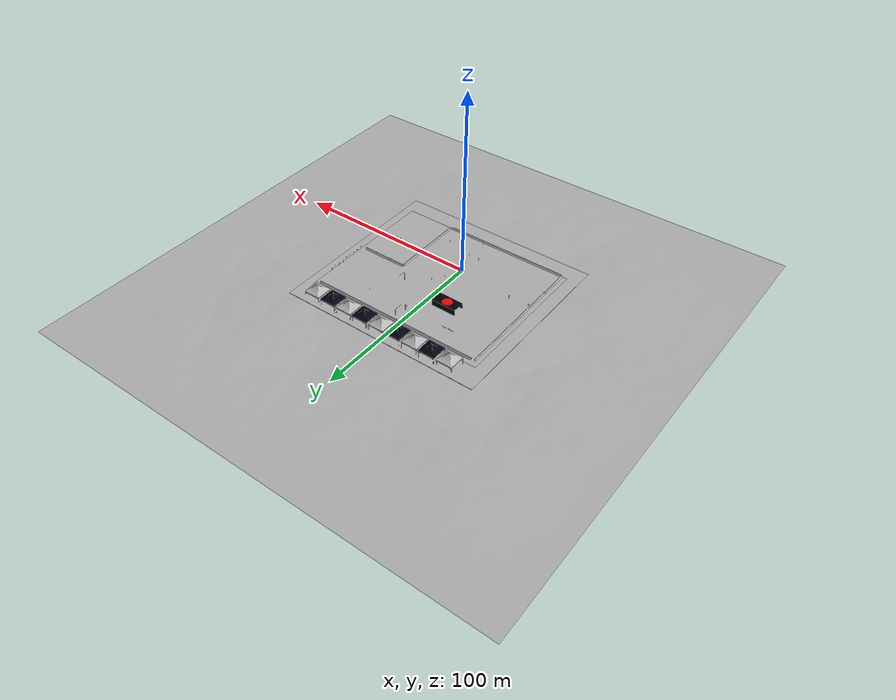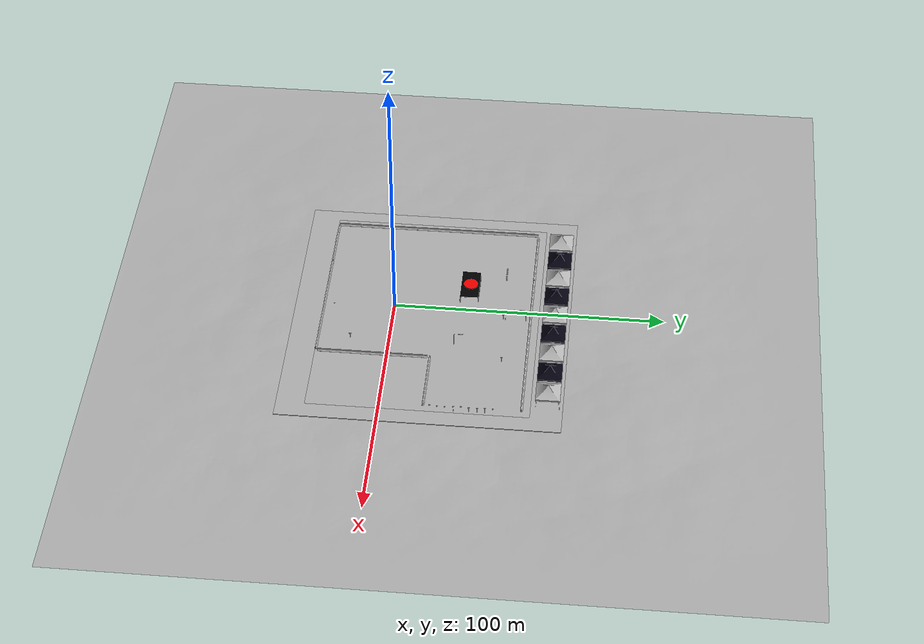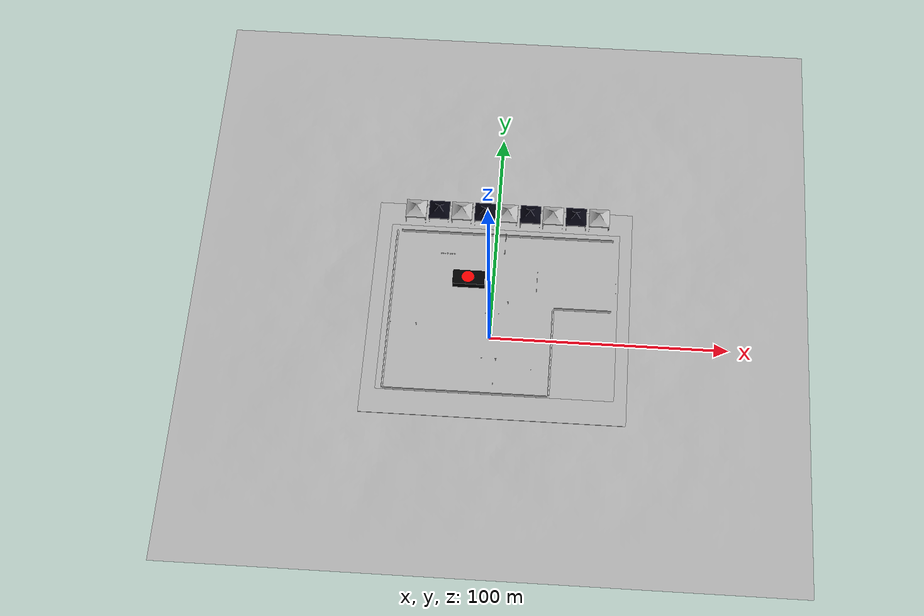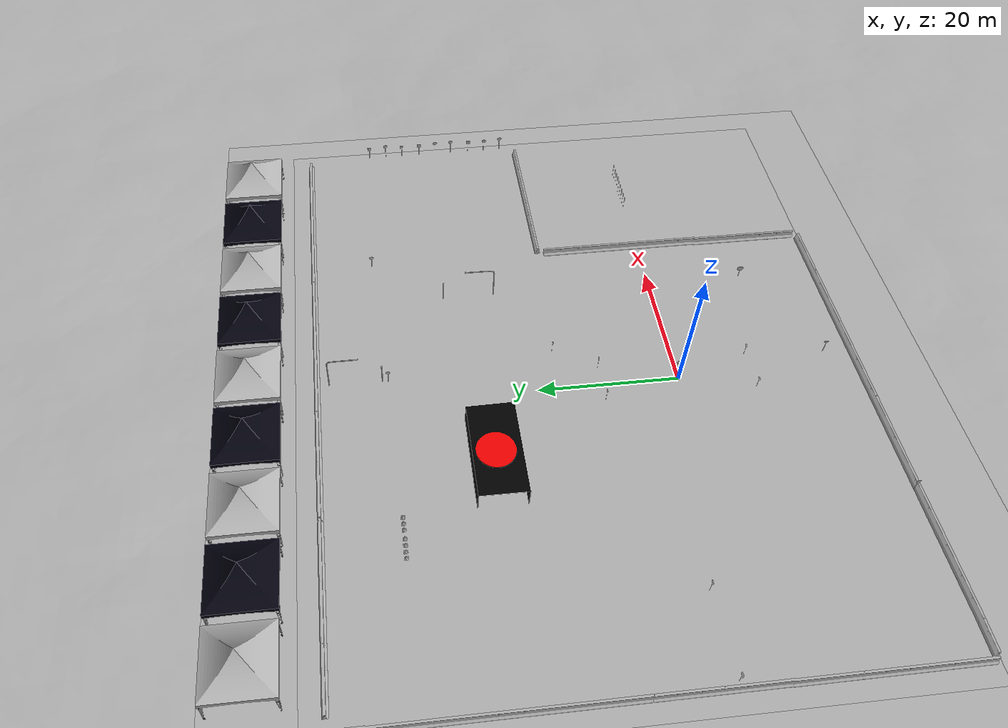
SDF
<sdf version="1.7">
 <world name="PIST">
  <scene>
   <grid>false</grid>
   <ambient>0.4 0.4 0.4 1</ambient>
   <background>0.26 0.40 1.0 1</background>
   <shadows>0</shadows>
  </scene>
  <plugin filename="ignition-gazebo-physics-system" name="gz::sim::systems::Physics"/>
  <plugin filename="ignition-gazebo-user-commands-system" name="gz::sim::systems::UserCommands"/>
  <plugin filename="ignition-gazebo-scene-broadcaster-system" name="gz::sim::systems::SceneBroadcaster"/>
  <plugin filename="ignition-gazebo-contact-system" name="gz::sim::systems::Contact"/>
  <plugin filename="ignition-gazebo-sensors-system" name="ignition::gazebo::systems::Sensors">
   <render_engine>ogre2</render_engine>
  </plugin>
  <light type="directional" name="sun">
   <pose>0 0 10 0 0 0</pose>
   <diffuse>0.8 0.8 0.8 1</diffuse>
   <specular>0.2 0.2 0.2 1</specular>
   <attenuation>
    <range>1000</range>
    <constant>0.9</constant>
    <linear>0.01</linear>
    <quadratic>0.001</quadratic>
   </attenuation>
   <direction>-0.5 0.1 -0.9</direction>
  </light>
  <model name="SONPIST">
   <static>true</static>
   <link name="link">
    <collision name="collision"><geometry><mesh><uri>SONPIST.dae</uri></mesh></geometry></collision>
    <visual name="visual"><geometry><mesh><uri>SONPIST.dae</uri></mesh></geometry></visual>
   </link>
  </model>
  <model name="dur">
   <static>true</static>
   <pose>18.1686 -14.2362 0 0 0 -1.6456</pose>
   <link name="link4">
    <visual name="visual">
     <geometry><mesh><uri>model://tabelalar/meshes/dur.dae</uri><scale>1 1 1</scale></mesh></geometry>
    </visual>
   </link>
  </model>
  <model name="durak">
   <static>true</static>
   <pose>-42.1911 4.2702 0 0 0 -3.0219</pose>
   <link name="link3">
    <visual name="visual">
     <geometry><mesh><uri>model://tabelalar/meshes/durak.dae</uri><scale>1 1 1</scale></mesh></geometry>
    </visual>
   </link>
  </model>
  <model name="durak_2">
   <static>true</static>
   <pose>-20.6075 -25.5451 0 0 0 -1.5094</pose>
   <link name="link3">
    <visual name="visual">
     <geometry><mesh><uri>model://tabelalar/meshes/durak.dae</uri><scale>1 1 1</scale></mesh></geometry>
    </visual>
   </link>
  </model>
  <model name="durak_3">
   <static>true</static>
   <pose>6.7255 16.9317 0 0 0 0</pose>
   <link name="link3">
    <visual name="visual">
     <geometry><mesh><uri>model://tabelalar/meshes/durak.dae</uri><scale>1 1 1</scale></mesh></geometry>
    </visual>
   </link>
  </model>
  <model name="engelli_park">
   <static>true</static>
   <pose>52.0752 23.6383 0 0 0 -1.6550</pose>
   <link name="link5">
    <visual name="visual">
     <geometry><mesh><uri>model://tabelalar/meshes/engellipark.dae</uri><scale>1 1 1</scale></mesh></geometry>
    </visual>
   </link>
  </model>
  <model name="engelli_park2">
   <static>true</static>
   <pose>51.9513 32.1565 0 0 0 -1.5577</pose>
   <link name="link29">
    <visual name="visual">
     <geometry><mesh><uri>model://tabelalar/meshes/engellipark.dae</uri><scale>1 1 1</scale></mesh></geometry>
    </visual>
   </link>
  </model>
  <model name="engelli_park3">
   <static>true</static>
   <pose>51.9605 35.1834 0 0 0 -1.5577</pose>
   <link name="link30">
    <visual name="visual">
     <geometry><mesh><uri>model://tabelalar/meshes/engellipark.dae</uri><scale>1 1 1</scale></mesh></geometry>
    </visual>
   </link>
  </model>
  <model name="engelli_park4">
   <static>true</static>
   <pose>51.9406 40.7256 0 0 0 -1.5577</pose>
   <link name="link32">
    <visual name="visual">
     <geometry><mesh><uri>model://tabelalar/meshes/engellipark.dae</uri><scale>1 1 1</scale></mesh></geometry>
    </visual>
   </link>
  </model>
  <model name="girilmez">
   <static>true</static>
   <pose>2.6863 -22.0557 0 0 0 -1.672</pose>
   <link name="link6">
    <visual name="visual">
     <geometry><mesh><uri>/model://tabelalar/meshes/girilmez.dae</uri><scale>1 1 1</scale></mesh></geometry>
    </visual>
   </link>
  </model>
  <model name="iki_yon">
   <static>true</static>
   <pose>37 0 0 0 0 0</pose>
   <link name="link7">
    <visual name="visual">
     <geometry><mesh><uri>model://tabelalar/meshes/ikiyon.dae</uri><scale>1 1 1</scale></mesh></geometry>
    </visual>
   </link>
  </model>
  <model name="ileri">
   <static>true</static>
   <pose>-2.9745 24.0334 0 0 0 1.5017</pose>
   <link name="link8">
    <visual name="visual">
     <geometry><mesh><uri>model://tabelalar/meshes/ileri.dae</uri><scale>1 1 1</scale></mesh></geometry>
    </visual>
   </link>
  </model>
  <model name="ileri_sag">
   <static>true</static>
   <pose>36 0 0 0 0 0</pose>
   <link name="link9">
    <visual name="visual">
     <geometry><mesh><uri>model://tabelalar/meshes/ilerisag.dae</uri><scale>1 1 1</scale></mesh></geometry>
    </visual>
   </link>
  </model>
  <model name="ileri_sol">
   <static>true</static>
   <pose>3.6488 40.7530 0 0 0 1.5295</pose>
   <link name="link10">
    <visual name="visual">
     <geometry><mesh><uri>model://tabelalar/meshes/ilerisol.dae</uri><scale>1 1 1</scale></mesh></geometry>
    </visual>
   </link>
  </model>
  <model name="kavsak">
   <static>true</static>
   <pose>3.1906 -10.4292 0 0 0 0</pose>
   <link name="link11">
    <visual name="visual">
     <geometry><mesh><uri>model://tabelalar/meshes/kavsak.dae</uri><scale>1 1 1</scale></mesh></geometry>
    </visual>
   </link>
  </model>
  <model name="kavsak_2">
   <static>true</static>
   <pose>-2.6605 -10.4292 0 0 0 0</pose>
   <link name="link35">
    <visual name="visual">
     <geometry><mesh><uri>model://tabelalar/meshes/kavsak.dae</uri><scale>1 1 1</scale></mesh></geometry>
    </visual>
   </link>
  </model>
  <model name="kavsak_3">
   <static>true</static>
   <pose>3.0269 10.9777 0 0 0 3.0479</pose>
   <link name="link39">
    <visual name="visual">
     <geometry><mesh><uri>model://tabelalar/meshes/kavsak.dae</uri><scale>1 1 1</scale></mesh></geometry>
    </visual>
   </link>
  </model>
  <model name="kavsak_4">
   <static>true</static>
   <pose>-2.5151 10.9308 0 0 0 -3.1357</pose>
   <link name="link40">
    <visual name="visual">
     <geometry><mesh><uri>model://tabelalar/meshes/kavsak.dae</uri><scale>1 1 1</scale></mesh></geometry>
    </visual>
   </link>
  </model>
  <model name="park">
   <static>true</static>
   <pose>52.0229 20.9028 0 0 0 -1.6336</pose>
   <link name="link12">
    <visual name="visual">
     <geometry><mesh><uri>model://tabelalar/meshes/park.dae</uri><scale>1 1 1</scale></mesh></geometry>
    </visual>
   </link>
  </model>
  <model name="park_yapilmaz">
   <static>true</static>
   <pose>52.0231 18.1399 0 0 0 -1.5211</pose>
   <link name="link13">
    <visual name="visual">
     <geometry><mesh><uri>model://tabelalar/meshes/parkyapilmaz.dae</uri><scale>1 1 1</scale></mesh></geometry>
    </visual>
   </link>
  </model>
  <model name="park_yapilmaz2">
   <static>true</static>
   <pose>52.0674 26.6380 0 0 0 -1.5211</pose>
   <link name="link25">
    <visual name="visual">
     <geometry><mesh><uri>model://tabelalar/meshes/parkyapilmaz.dae</uri><scale>1 1 1</scale></mesh></geometry>
    </visual>
   </link>
  </model>
  <model name="park_yapilmaz3">
   <static>true</static>
   <pose>51.9760 29.3446 0 0 0 -1.5211</pose>
   <link name="link26">
    <visual name="visual">
     <geometry><mesh><uri>model://tabelalar/meshes/parkyapilmaz.dae</uri><scale>1 1 1</scale></mesh></geometry>
    </visual>
   </link>
  </model>
  <model name="park_yapilmaz4">
   <static>true</static>
   <pose>52.0077 37.9012 0 0 0 -1.5211</pose>
   <link name="link31">
    <visual name="visual">
     <geometry><mesh><uri>model://tabelalar/meshes/parkyapilmaz.dae</uri><scale>1 1 1</scale></mesh></geometry>
    </visual>
   </link>
  </model>
  <model name="park_yasak">
   <static>true</static>
   <pose>38 0 0 0 0 0</pose>
   <link name="link14">
    <visual name="visual">
     <geometry><mesh><uri>model://tabelalar/meshes/parkyasak.dae</uri><scale>1 1 1</scale></mesh></geometry>
    </visual>
   </link>
  </model>
  <model name="saga_donus">
   <static>true</static>
   <pose>39 0 0 0 0 0</pose>
   <link name="link15">
    <visual name="visual">
     <geometry><mesh><uri>model://tabelalar/meshes/sagdonusyasak.dae</uri><scale>1 1 1</scale></mesh></geometry>
    </visual>
   </link>
  </model>
  <model name="sag_yon">
   <static>true</static>
   <pose>40 0 0 0 0 0</pose>
   <link name="link16">
    <visual name="visual">
     <geometry><mesh><uri>model://tabelalar/meshes/sagyon.dae</uri><scale>1 1 1</scale></mesh></geometry>
    </visual>
   </link>
  </model>
  <model name="sola_donus">
   <static>true</static>
   <pose>41 0 0 0 0 0</pose>
   <link name="link17">
    <visual name="visual">
     <geometry><mesh><uri>model://tabelalar/meshes/soladonus.dae</uri><scale>1 1 1</scale></mesh></geometry>
    </visual>
   </link>
  </model>
  <model name="sola_donus_yasak">
   <static>true</static>
   <pose>25.9380 41.7933 0 0 0 1.5829</pose>
   <link name="link33">
    <visual name="visual">
     <geometry><mesh><uri>model://tabelalar/meshes/soldonusyasak.dae</uri><scale>1 1 1</scale></mesh></geometry>
    </visual>
   </link>
  </model>
  <model name="sola_donus_yasak2">
   <static>true</static>
   <pose>35 0 0 0 0 0</pose>
   <link name="link33">
    <visual name="visual">
     <geometry><mesh><uri>model://tabelalar/meshes/soldonusyasak.dae</uri><scale>1 1 1</scale></mesh></geometry>
    </visual>
   </link>
  </model>
  <model name="sola_donus_yasak3">
   <static>true</static>
   <pose>-31.2415 4.4956 0 0 0 3.1232</pose>
   <link name="link34">
    <visual name="visual">
     <geometry><mesh><uri>model://tabelalar/meshes/soldonusyasak.dae</uri><scale>1 1 1</scale></mesh></geometry>
    </visual>
   </link>
  </model>
  <model name="sol_sag">
   <static>true</static>
   <pose>42 0 0 0 0 0</pose>
   <link name="link19">
    <visual name="visual">
     <geometry><mesh><uri>model://tabelalar/meshes/solsag.dae</uri><scale>1 1 1</scale></mesh></geometry>
    </visual>
   </link>
  </model>
  <model name="sol_yon">
   <static>true</static>
   <pose>0.8754 -0.3927 0 0 0 -0.0827</pose>
   <link name="link20">
    <visual name="visual">
     <geometry><mesh><uri>model://tabelalar/meshes/solyon.dae</uri><scale>1 1 1</scale></mesh></geometry>
    </visual>
   </link>
  </model>
  <model name="sol_yon2">
   <static>true</static>
   <pose>1.1308 -0.0790 0 0 0 1.5742</pose>
   <link name="link36">
    <visual name="visual">
     <geometry><mesh><uri>model://tabelalar/meshes/solyon.dae</uri><scale>1 1 1</scale></mesh></geometry>
    </visual>
   </link>
  </model>
  <model name="sol_yon3">
   <static>true</static>
   <pose>0.4828 -0.0661 0 0 0 -1.6431</pose>
   <link name="link37">
    <visual name="visual">
     <geometry><mesh><uri>model://tabelalar/meshes/solyon.dae</uri><scale>1 1 1</scale></mesh></geometry>
    </visual>
   </link>
  </model>
  <model name="sol_yon4">
   <static>true</static>
   <pose>0.7949 0.3440 0 0 0 3.0904</pose>
   <link name="link38">
    <visual name="visual">
     <geometry><mesh><uri>model://tabelalar/meshes/solyon.dae</uri><scale>1 1 1</scale></mesh></geometry>
    </visual>
   </link>
  </model>
  <model name="trafige_kapali">
   <static>true</static>
   <pose>43 0 0 0 0 0</pose>
   <link name="link21">
    <visual name="visual">
     <geometry><mesh><uri>model://tabelalar/meshes/trafigekapali.dae</uri><scale>1 1 1</scale></mesh></geometry>
    </visual>
   </link>
  </model>
  <model name="koni">
   <static>true</static>
   <pose>-23.3513 40.3702 0 0 0 0</pose>
   <link name="link22">
    <visual name="visual">
     <geometry><mesh><uri>model://dekorasyon/koni/koni.dae</uri><scale>1 1 1</scale></mesh></geometry>
    </visual>
   </link>
  </model>
  <model name="koni1">
   <static>true</static>
   <pose>-22.5111 40.3702 0 0 0 0</pose>
   <link name="link22">
    <visual name="visual">
     <geometry><mesh><uri>model://dekorasyon/koni/koni.dae</uri><scale>1 1 1</scale></mesh></geometry>
    </visual>
   </link>
  </model>
  <model name="koni2">
   <static>true</static>
   <pose>-21.6394 40.3702 0 0 0 0</pose>
   <link name="link22">
    <visual name="visual">
     <geometry><mesh><uri>model://dekorasyon/koni/koni.dae</uri><scale>1 1 1</scale></mesh></geometry>
    </visual>
   </link>
  </model>
  <model name="koni3">
   <static>true</static>
   <pose>-20.7394 40.3702 0 0 0 0</pose>
   <link name="link22">
    <visual name="visual">
     <geometry><mesh><uri>model://dekorasyon/koni/koni.dae</uri><scale>1 1 1</scale></mesh></geometry>
    </visual>
   </link>
  </model>
  <model name="koni4">
   <static>true</static>
   <pose>-19.5111 40.3702 0 0 0 0</pose>
   <link name="link22">
    <visual name="visual">
     <geometry><mesh><uri>model://dekorasyon/koni/koni.dae</uri><scale>1 1 1</scale></mesh></geometry>
    </visual>
   </link>
  </model>
  <model name="koni5">
   <static>true</static>
   <pose>-18.6394 40.3702 0 0 0 0</pose>
   <link name="link22">
    <visual name="visual">
     <geometry><mesh><uri>model://dekorasyon/koni/koni.dae</uri><scale>1 1 1</scale></mesh></geometry>
    </visual>
   </link>
  </model>
  <model name="koni6">
   <static>true</static>
   <pose>-17.7394 40.3702 0 0 0 0</pose>
   <link name="link22">
    <visual name="visual">
     <geometry><mesh><uri>model://dekorasyon/koni/koni.dae</uri><scale>1 1 1</scale></mesh></geometry>
    </visual>
   </link>
  </model>
  <model name="bariyerTamamlanmış">
   <static>true</static>
   <pose>-0.4989 0.4262 0 0 0 0</pose>
   <link name="link24">
    <visual name="visual">
     <geometry><mesh><uri>model://dekorasyon/engel2/engel.dae</uri><scale>1 1 1</scale></mesh></geometry>
    </visual>
   </link>
  </model>
  <model name="asfalt">
   <static>true</static>
   <link name="link24">
    <visual name="visual">
     <geometry>
      <mesh><uri>model://silme kendi modellerin/asfalt/asfalt.dae</uri><scale>1 1 1</scale></mesh>
     </geometry>
    </visual>
   </link>
  </model>
  <model name="çadır">
   <static>true</static>
   <link name="link24">
    <visual name="visual">
     <geometry><mesh><uri>model://silme kendi modellerin/cadir/tent.dae</uri><scale>1 1 1</scale></mesh></geometry>
    </visual>
   </link>
  </model>
  <model name="direk">
   <static>true</static>
   <pose>18.4388 31.4475 0 0 0 -1.5407</pose>
   <link name="link24">
    <visual name="visual">
     <geometry><mesh><uri>model://direk.dae</uri><scale>1 1 1</scale></mesh></geometry>
    </visual>
   </link>
  </model>
  <model name="L_direk">
   <static>true</static>
   <pose>18.4388 23.8395 0 0 0 -1.5799</pose>
   <link name="link24">
    <visual name="visual">
     <geometry><mesh><uri>model://direk2.dae</uri><scale>1 1 1</scale></mesh></geometry>
    </visual>
   </link>
  </model>
  <model name="direk2">
   <static>true</static>
   <pose>3.9118 41.5818 0 0 0 -1.5407</pose>
   <link name="link24">
    <visual name="visual">
     <geometry><mesh><uri>model://direk.dae</uri><scale>1 1 1</scale></mesh></geometry>
    </visual>
   </link>
  </model>
  <model name="L_direk2">
   <static>true</static>
   <pose>3.9118 49.0775 0 0 0 1.5799</pose>
   <link name="link24">
    <visual name="visual">
     <geometry><mesh><uri>model://direk2.dae</uri><scale>1 1 1</scale></mesh></geometry>
    </visual>
   </link>
  </model>
  <model name="dene">
   <static>true</static>
   <pose>-0 0 -0.5486 0 0 0</pose>
   <link name="link24">
    <visual name="visual">
     <geometry><mesh><uri>model://silme kendi modellerin/patch.dae</uri><scale>2 2 2</scale></mesh></geometry>
    </visual>
   </link>
  </model>
 </world>
</sdf>
